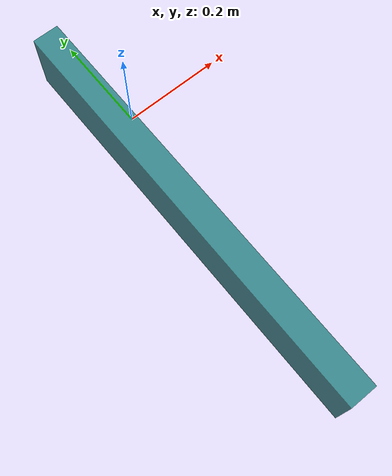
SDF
<?xml version="1.0"?>

<!--
  The cube has side length 7cm.
  The cube is connected to world with a planar joint.
  (https://github.com/pangtao22/quasistatic_simulator)
-->

<sdf version="1.7">
  <model name="cube_planar">

    <joint name="world_cube_offset" type="fixed">
      <child>cube_root</child>
      <parent>world</parent>
      <axis>
        <limit>
          <effort>0</effort>
        </limit>
      </axis>
    </joint>

    <link name="cube_root">
      <pose relative_to="__model__">-0.06 -0.25 0.103 0 0 0</pose>
    </link>

    <link name="cube_ghost_link_x" />
    <link name="cube_ghost_link_z" />

    <joint name="joint_y" type="prismatic">
      <parent>cube_root</parent>
      <child>cube_ghost_link_z</child>
      <axis>
        <limit>
          <lower>-0.3</lower>
          <upper>0.3</upper>
        </limit>
        <xyz>0 1 0</xyz>
      </axis>
    </joint>

    <joint name="joint_z" type="prismatic">
      <parent>cube_ghost_link_z</parent>
      <child>cube_ghost_link_x</child>
      <axis>
        <limit>
          <lower>-0.05</lower>
          <upper>0.05</upper>
        </limit>
        <xyz>0 0 1</xyz>
      </axis>
    </joint>

    <joint name="joint_x" type="revolute">
      <parent>cube_ghost_link_x</parent>
      <child>cube_link</child>
      <axis>
        <xyz>1 0 0</xyz>
      </axis>
    </joint>

    <link name="cube_link">
      <pose relative_to="cube_root">0 0 0 0 0 0</pose>
      <inertial>
        <mass>100.0</mass>
        <inertia>
          <ixx>10.0</ixx>
          <ixy>0</ixy>
          <ixz>0</ixz>
          <iyy>10.0</iyy>
          <iyz>0</iyz>
          <izz>10.0</izz>
        </inertia>
      </inertial>

      <visual name="visual">
        <geometry>
          <box>
            <size> 0.05 0.8 0.13 </size>
          </box>
        </geometry>
        <material>
          <diffuse>0.1 0.5 0.5 0.8</diffuse>
        </material>
      </visual>

      <collision name="collision">
        <geometry>
          <box>
            <size> 0.05 0.8 0.13 </size>
          </box>
        </geometry>
        <surface>
          <friction>
            <ode>
              <mu>10.0</mu>
              <mu2>10.0</mu2>
            </ode>
          </friction>
        </surface>
      </collision>

    </link>

  </model>
</sdf>
